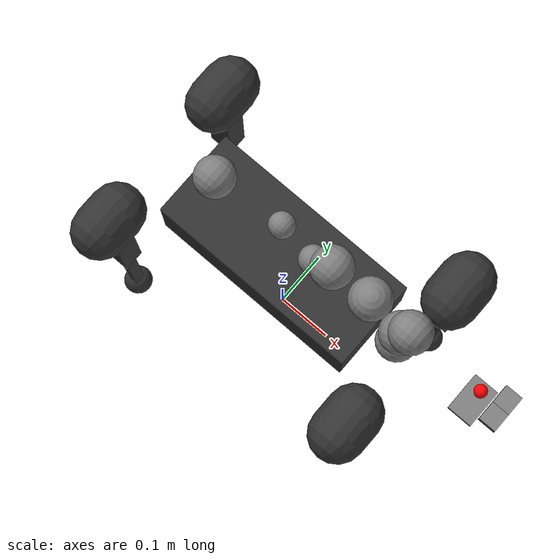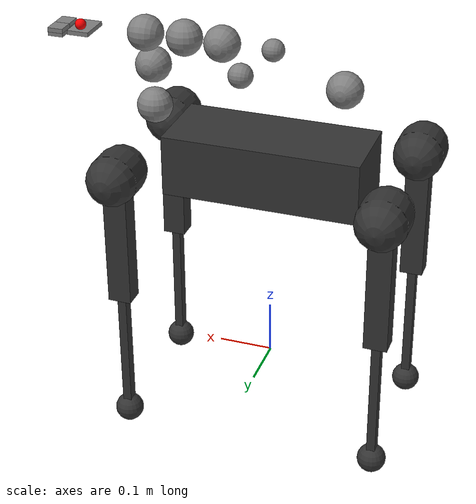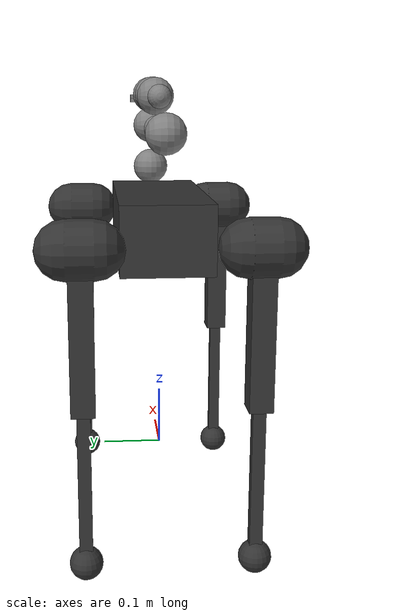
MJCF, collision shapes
<mujoco model="aliengo_description">
    <compiler angle="radian" autolimits="true"/>

    <default>
        <joint damping="0.6" armature="0.01" frictionloss="0.2"/>

        <default class="visual">
            <geom type="mesh" contype="0" conaffinity="0" group="2"/>
        </default>
        <default class="collision">
            <geom group="3" rgba="0.2 0.2 0.2 0.5"/>
        </default>

        <default class="hip">
            <motor ctrlrange="-44.4 44.4"/>
        </default>
        <default class="thigh">
            <motor ctrlrange="-35.278 35.278"/>
        </default>
        <default class="calf">
            <motor ctrlrange="-35.278 35.278"/>
        </default>

        <default class="collision_arm">
            <geom type="sphere" group="3" mass="0" density="0"/>
            <default class="z1_gripper_stator_collision">
            <geom pos="0.051 0 0" type="mesh"/>
            </default>
            <default class="z1_gripper_stator_pad_collision_1">
            <geom type="box" size="0.014 0.015 0.004" pos="0.186 -0.015 -0.0125"/>
            </default>
            <default class="z1_gripper_stator_pad_collision_2">
            <geom type="box" size="0.014 0.015 0.004" pos="0.186 0.015 -0.0125"/>
            </default>
            <default class="z1_gripper_mover_collision">
            <geom type="mesh"/>
            </default>
            <default class="z1_gripper_mover_pad_collision_1">
            <geom type="box" size="0.014 0.015 0.004" pos="0.086 -0.015 -0.0055"/>
            </default>
            <default class="z1_gripper_mover_pad_collision_2">
            <geom type="box" size="0.014 0.015 0.004" pos="0.086 0.015 -0.0055"/>
            </default>
        </default>

    </default>

    <asset>
        <mesh name="trunk" file="aliengo/assets/trunk.stl"/>
        <mesh name="hip" file="aliengo/assets/hip.stl"/>
        <mesh name="thigh_mirror" file="aliengo/assets/thigh_mirror.stl"/>
        <mesh name="calf" file="aliengo/assets/calf.stl"/>
        <mesh name="thigh" file="aliengo/assets/thigh.stl"/>

        <mesh file="z1/assets/z1_Link00.stl"/>
        <mesh file="z1/assets/z1_Link01.stl"/>
        <mesh file="z1/assets/z1_Link02.stl"/>
        <mesh file="z1/assets/z1_Link03.stl"/>
        <mesh file="z1/assets/z1_Link04.stl"/>
        <mesh file="z1/assets/z1_Link05.stl"/>
        <mesh file="z1/assets/z1_Link06.stl"/>
        <mesh file="z1/assets/z1_GripperStator.stl"/>
        <mesh file="z1/assets/z1_GripperStator_col_1.stl"/>
        <mesh file="z1/assets/z1_GripperStator_col_2.stl"/>
        <mesh file="z1/assets/z1_GripperStator_col_3.stl"/>
        <mesh file="z1/assets/z1_GripperStator_col_4.stl"/>
        <mesh file="z1/assets/z1_GripperStator_col_5.stl"/>
        <mesh file="z1/assets/z1_GripperStator_col_6.stl"/>
        <mesh file="z1/assets/z1_GripperMover.stl"/>
        <mesh file="z1/assets/z1_GripperMover_col_1.stl"/>
        <mesh file="z1/assets/z1_GripperMover_col_2.stl"/>
        <mesh file="z1/assets/z1_GripperMover_col_3.stl"/>
        <mesh file="z1/assets/z1_GripperMover_col_4.stl"/>
        <mesh file="z1/assets/z1_GripperMover_col_5.stl"/>
    </asset>

    <worldbody>

        <body name="trunk" pos="0 0 0.4">
            <inertial pos="0.00846406 0.00404455 -0.000762916" quat="-3.12625e-05 0.708321 0.00247254 0.705886"
                      mass="13.042" diaginertia="0.174706 0.161175 0.033357"/>
            <freejoint/>

            <!-- trunk visual mesh and collision -->
            <geom type="mesh" class="visual" rgba="0.2 0.2 0.2 1" mesh="trunk"/>
            <geom type="box" class="collision" size="0.18 0.075 0.056"/>

            <!-- modify this to add payload -->

            <!-- imu and camera -->
            <site name="imu" pos="0 0 0"/>
            <camera name="robotcam" pos="0.31 -0.005 0.00292751" quat="0.4 0.4 -0.4 -0.4"/>

            <!-- FL leg -->
            <body name="FL_hip" pos="0.2399 0.051 0">
                <inertial pos="-0.022191 0.015144 -1.5e-05" quat="-0.0135493 0.706835 0.0117635 0.707151" mass="1.993"
                          diaginertia="0.00558695 0.00491009 0.00290132"/>
                <joint name="FL_hip_joint" pos="0 0 0" axis="1 0 0" limited="true" range="-1.22173 1.22173"/>

                <!-- FL_hip visual mesh and collision -->
                <geom type="mesh" class="visual" rgba="0.2 0.2 0.2 1" mesh="hip"/>
                <geom type="capsule" class="collision" size="0.046 0.0209" pos="0 0.083 0"
                      quat="0.707107 0.707107 0 0"/>

                <body name="FL_thigh" pos="0 0.083 0">
                    <inertial pos="-0.005607 -0.003877 -0.048199" quat="0.717987 -0.031246 -0.0335669 0.694544"
                              mass="0.639" diaginertia="0.0058474 0.00571186 0.000324584"/>
                    <joint name="FL_thigh_joint" pos="0 0 0" axis="0 1 0"/>

                    <!-- FL_thigh visual mesh and collision -->
                    <geom type="mesh" class="visual" rgba="0.2 0.2 0.2 1" mesh="thigh"/>
                    <geom type="box" class="collision" size="0.125 0.0187 0.0215" pos="0 0 -0.125"
                          quat="0.707107 0 0.707107 0"/>

                    <body name="FL_calf" pos="0 0 -0.25">
                        <inertial pos="0.00215606 4.88427e-05 -0.166671" quat="0.707462 0.00517582 0.00535172 0.706712"
                                  mass="0.267" diaginertia="0.00690975 0.00689712 5.4885e-05"/>
                        <joint name="FL_calf_joint" pos="0 0 0" axis="0 1 0" limited="true" range="-2.77507 -0.645772"/>

                        <!-- FL_calf visual mesh and collision -->
                        <geom type="mesh" class="visual" rgba="0 0 0 1" mesh="calf"/>
                        <geom type="box" class="collision" size="0.125 0.0104 0.008" pos="0 0 -0.125"
                              quat="0.707107 0 0.707107 0"/>

                        <!-- FL_foot only collision -->
                        <geom name="FL" class="collision" size="0.0265" pos="0 0 -0.25"/>
                    </body>
                </body>
            </body>

            <!-- FR leg -->
            <body name="FR_hip" pos="0.2399 -0.051 0">
                <inertial pos="-0.022191 -0.015144 -1.5e-05" quat="0.0135493 0.706835 -0.0117635 0.707151" mass="1.993"
                          diaginertia="0.00558695 0.00491009 0.00290132"/>
                <joint name="FR_hip_joint" pos="0 0 0" axis="1 0 0" limited="true" range="-1.22173 1.22173"/>

                <!-- FR_hip visual mesh and collision -->
                <geom type="mesh" mesh="hip" class="visual" quat="0 1 0 0" rgba="0.2 0.2 0.2 1"/>
                <geom type="capsule" class="collision" size="0.046 0.0209" pos="0 -0.083 0"
                      quat="0.707107 0.707107 0 0"/>

                <body name="FR_thigh" pos="0 -0.083 0">
                    <inertial pos="-0.005607 0.003877 -0.048199" quat="0.694544 -0.0335669 -0.031246 0.717987"
                              mass="0.639" diaginertia="0.0058474 0.00571186 0.000324584"/>
                    <joint name="FR_thigh_joint" pos="0 0 0" axis="0 1 0"/>

                    <!-- FR_thigh visual mesh and collision -->
                    <geom type="mesh" mesh="thigh_mirror" class="visual" rgba="0.2 0.2 0.2 1"/>
                    <geom type="box" class="collision" size="0.125 0.0187 0.0215" pos="0 0 -0.125"
                          quat="0.707107 0 0.707107 0"/>

                    <body name="FR_calf" pos="0 0 -0.25">
                        <inertial pos="0.00215606 4.88427e-05 -0.166671" quat="0.707462 0.00517582 0.00535172 0.706712"
                                  mass="0.267" diaginertia="0.00690975 0.00689712 5.4885e-05"/>
                        <joint name="FR_calf_joint" pos="0 0 0" axis="0 1 0" limited="true" range="-2.77507 -0.645772"/>

                        <!-- FR_calf visual mesh and collision -->
                        <geom type="mesh" mesh="calf" class="visual" rgba="0 0 0 1"/>
                        <geom type="box" class="collision" size="0.125 0.0104 0.008" pos="0 0 -0.125"
                              quat="0.707107 0 0.707107 0"/>

                        <!-- FR_foot only collision -->
                        <geom name="FR" class="collision" size="0.0265" pos="0 0 -0.25"/>
                    </body>
                </body>
            </body>

            <!-- RL leg -->
            <body name="RL_hip" pos="-0.2399 0.051 0">
                <inertial pos="0.022191 0.015144 -1.5e-05" quat="0.0117635 0.707151 -0.0135493 0.706835" mass="1.993"
                          diaginertia="0.00558695 0.00491009 0.00290132"/>
                <joint name="RL_hip_joint" pos="0 0 0" axis="1 0 0" limited="true" range="-1.22173 1.22173"/>

                <!-- RL_hip visual mesh and collision -->
                <geom type="mesh" class="visual" quat="0 0 1 0" rgba="0.2 0.2 0.2 1" mesh="hip"/>
                <geom type="capsule" class="collision" size="0.046 0.0209" pos="0 0.083 0"
                      quat="0.707107 0.707107 0 0"/>

                <body name="RL_thigh" pos="0 0.083 0">
                    <inertial pos="-0.005607 -0.003877 -0.048199" quat="0.717987 -0.031246 -0.0335669 0.694544"
                              mass="0.639" diaginertia="0.0058474 0.00571186 0.000324584"/>
                    <joint name="RL_thigh_joint" pos="0 0 0" axis="0 1 0"/>

                    <!-- RL_thigh visual mesh and collision -->
                    <geom type="mesh" class="visual" rgba="0.2 0.2 0.2 1" mesh="thigh"/>
                    <geom type="box" class="collision" size="0.125 0.0187 0.0215" pos="0 0 -0.125"
                          quat="0.707107 0 0.707107 0"/>

                    <body name="RL_calf" pos="0 0 -0.25">
                        <inertial pos="0.00215606 4.88427e-05 -0.166671" quat="0.707462 0.00517582 0.00535172 0.706712"
                                  mass="0.267" diaginertia="0.00690975 0.00689712 5.4885e-05"/>
                        <joint name="RL_calf_joint" pos="0 0 0" axis="0 1 0" limited="true" range="-2.77507 -0.645772"/>

                        <!-- RL_calf visual mesh and collision -->
                        <geom type="mesh" class="visual" rgba="0 0 0 1" mesh="calf"/>
                        <geom type="box" class="collision" size="0.125 0.0104 0.008" pos="0 0 -0.125"
                              quat="0.707107 0 0.707107 0"/>

                        <!-- RL_foot only collision -->
                        <geom name="RL" class="collision" size="0.0265" pos="0 0 -0.25"/>
                    </body>
                </body>
            </body>

            <!-- RR leg -->
            <body name="RR_hip" pos="-0.2399 -0.051 0">
                <inertial pos="0.022191 -0.015144 -1.5e-05" quat="-0.0117635 0.707151 0.0135493 0.706835" mass="1.993"
                          diaginertia="0.00558695 0.00491009 0.00290132"/>
                <joint name="RR_hip_joint" pos="0 0 0" axis="1 0 0" limited="true" range="-1.22173 1.22173"/>

                <!-- RR_hip visual mesh and collision -->
                <geom type="mesh" class="visual" quat="0 0 0 -1" rgba="0.2 0.2 0.2 1" mesh="hip"/>
                <geom type="capsule" class="collision" size="0.046 0.0209" pos="0 -0.083 0"
                      quat="0.707107 0.707107 0 0"/>

                <body name="RR_thigh" pos="0 -0.083 0">
                    <inertial pos="-0.005607 0.003877 -0.048199" quat="0.694544 -0.0335669 -0.031246 0.717987"
                              mass="0.639" diaginertia="0.0058474 0.00571186 0.000324584"/>
                    <joint name="RR_thigh_joint" pos="0 0 0" axis="0 1 0"/>

                    <!-- RR_thigh visual mesh and collision -->
                    <geom type="mesh" class="visual" rgba="0.2 0.2 0.2 1" mesh="thigh_mirror"/>
                    <geom type="box" class="collision" size="0.125 0.0187 0.0215" pos="0 0 -0.125"
                          quat="0.707107 0 0.707107 0"/>

                    <body name="RR_calf" pos="0 0 -0.25">
                        <inertial pos="0.00215606 4.88427e-05 -0.166671" quat="0.707462 0.00517582 0.00535172 0.706712"
                                  mass="0.267" diaginertia="0.00690975 0.00689712 5.4885e-05"/>
                        <joint name="RR_calf_joint" pos="0 0 0" axis="0 1 0" limited="true" range="-2.77507 -0.645772"/>

                        <!-- RR_calf visual mesh and collision -->
                        <geom type="mesh" class="visual" rgba="0 0 0 1" mesh="calf"/>
                        <geom type="box" class="collision" size="0.125 0.0104 0.008" pos="0 0 -0.125"
                              quat="0.707107 0 0.707107 0"/>

                        <!-- RR_foot only collision -->
                        <geom name="RR" class="collision" size="0.0265" pos="0 0 -0.25"/>
                    </body>
                </body>
            </body>

            <body name="link00" pos="0.22 0 0.055">
            <inertial pos="-0.00334984 -0.00013615 0.0249584" quat="-0.00692194 0.682592 0.00133293 0.730766" mass="0.472475"
                diaginertia="0.000531375 0.000415207 0.000378658"/>
            <geom class="visual" mesh="z1_Link00"/>
            <geom size="0.0325 0.0255" pos="0 0 0.0255" class="collision_arm"/>
                <body name="link01" pos="0 0 0.0585">
                    <inertial pos="2.47e-06 -0.00025198 0.0231717" quat="0.708578 0.705633 0.000281462 -0.000355927" mass="0.673326"
                    diaginertia="0.00128328 0.000839362 0.000719308"/>
                    <joint name="joint1" axis="0 0 1" range="-2.61799 2.61799"/>
                    <geom class="visual" mesh="z1_Link01"/>
                    <body name="link02" pos="0 0 0.045">
                    <inertial pos="-0.110126 0.00240029 0.00158266" quat="0.00748058 0.707092 -0.0114473 0.70699" mass="1.19132"
                        diaginertia="0.0246612 0.0243113 0.00100468"/>
                    <joint name="joint2" axis="0 1 0" range="0 2.96706" damping="2"/>
                    <geom class="visual" mesh="z1_Link02"/>
                    <geom size="0.0325 0.051" quat="1 1 0 0" class="collision_arm"/>
                    <geom size="0.0225 0.1175" pos="-0.1625 0 0" quat="1 0 1 0" class="collision_arm"/>
                    <geom size="0.0325 0.0255" pos="-0.35 0 0" quat="1 1 0 0" class="collision_arm"/>
                    <body name="link03" pos="-0.35 0 0">
                        <inertial pos="0.106092 -0.00541815 0.0347638" quat="0.540557 0.443575 0.426319 0.573839" mass="0.839409"
                        diaginertia="0.00954365 0.00938711 0.000558432"/>
                        <joint name="joint3" axis="0 1 0" range="-2.87979 0"/>
                        <geom class="visual" mesh="z1_Link03"/>
                        <geom size="0.02 0.058" pos="0.128 0 0.055" quat="1 0 1 0" class="collision_arm"/>
                        <geom size="0.0325 0.0295" pos="0.2205 0 0.055" quat="0.5 -0.5 0.5 0.5" class="collision_arm"/>
                        <body name="link04" pos="0.218 0 0.057">
                        <inertial pos="0.0436668 0.00364738 -0.00170192" quat="0.0390835 0.726445 -0.0526787 0.684087"
                            mass="0.564046" diaginertia="0.000981656 0.00094053 0.000302655"/>
                        <joint name="joint4" axis="0 1 0" range="-1.51844 1.51844"/>
                        <geom class="visual" mesh="z1_Link04"/>
                        <geom size="0.0325 0.0335" pos="0.072 0 0" class="collision_arm"/>
                        <body name="link05" pos="0.07 0 0">
                            <inertial pos="0.0312153 0 0.00646316" quat="0.462205 0.535209 0.53785 0.45895" mass="0.389385"
                            diaginertia="0.000558961 0.000547317 0.000167332"/>
                            <joint name="joint5" axis="0 0 1" range="-1.3439 1.3439"/>
                            <geom class="visual" mesh="z1_Link05"/>
                            <body name="link06" pos="0.0492 0 0">
                            <inertial pos="0.0241569 -0.00017355 -0.00143876" quat="0.998779 0.0457735 -0.00663717 0.0173548"
                                mass="0.288758" diaginertia="0.00018333 0.000147464 0.000146786"/>
                            <joint name="joint6" axis="1 0 0" range="-2.79253 2.79253"/>
                            <geom class="visual" mesh="z1_Link06"/>
                            <geom size="0.0325 0.0255" pos="0.0255 0 0" quat="1 0 1 0" class="collision_arm"/>
                            <site name="attachment_site" size="0.01" pos="0.15 0 0" quat="-1 1 1 1" rgba="1 0 0 1" group="1"/>

                            <geom pos="0.051 0 0" type="mesh" mesh="z1_GripperStator" class="visual"/>

                            <geom class="z1_gripper_stator_pad_collision_1"/>
                            <geom class="z1_gripper_stator_pad_collision_2"/>

                            <geom type="box" size="0.02 0.03 0.004" pos="0.15 -0.015 -0.0125"/>

                            <body name="gripperMover" pos="0.1 0 0">
                                <inertial pos="0.0132063 0.00476708 0.00380534" quat="0.0631093 0.669067 -0.0615783 0.737953"
                                mass="0.276213" diaginertia="0.000359044 0.000270888 0.000172378"/>
                                <joint name="jointGripper" axis="0 1 0" range="-1.51844 0"/>
                                <geom type="mesh" mesh="z1_GripperMover" class="visual"/>

                                <geom class="z1_gripper_mover_pad_collision_1"/>
                                <geom class="z1_gripper_mover_pad_collision_2"/>
                            </body>
                            </body>
                        </body>
                        </body>
                    </body>
                    </body>
                </body>
            </body>

        </body>
    </worldbody>

    <actuator>
        <motor name="FL_hip"   class="hip"    gear="1" joint="FL_hip_joint"/>
        <motor name="FL_thigh" class="thigh"  gear="1" joint="FL_thigh_joint"/>
        <motor name="FL_calf"  class="calf"   gear="1" joint="FL_calf_joint"/>
        <motor name="FR_hip"   class="hip"    gear="1" joint="FR_hip_joint"/>
        <motor name="FR_thigh" class="thigh"  gear="1" joint="FR_thigh_joint"/>
        <motor name="FR_calf"  class="calf"   gear="1" joint="FR_calf_joint"/>
        <motor name="RL_hip"   class="hip"    gear="1" joint="RL_hip_joint"/>
        <motor name="RL_thigh" class="thigh"  gear="1" joint="RL_thigh_joint"/>
        <motor name="RL_calf"  class="calf"   gear="1" joint="RL_calf_joint"/>
        <motor name="RR_hip"   class="hip"    gear="1" joint="RR_hip_joint"/>
        <motor name="RR_thigh" class="thigh"  gear="1" joint="RR_thigh_joint"/>
        <motor name="RR_calf"  class="calf"   gear="1" joint="RR_calf_joint" />

        <general name="motor1" joint="joint1" ctrlrange="-2.61799 2.61799"/>
        <general name="motor2" joint="joint2" ctrlrange="0 2.96706" forcerange="-60 60" gainprm="1500"
        biasprm="0 -1500 -150"/>
        <general name="motor3" joint="joint3" ctrlrange="-2.87979 0"/>
        <general name="motor4" joint="joint4" ctrlrange="-1.51844 1.51844"/>
        <general name="motor5" joint="joint5" ctrlrange="-1.3439 1.3439"/>
        <general name="motor6" joint="joint6" ctrlrange="-2.79253 2.79253"/>
        <general name="motorGripper" joint="jointGripper" ctrlrange="-1.51844 0"/>
    </actuator>

    <sensor>

        <jointpos name="FL_hip_pos"     joint="FL_hip_joint"/>
        <jointpos name="FL_thigh_pos"   joint="FL_thigh_joint"/>
        <jointpos name="FL_calf_pos"    joint="FL_calf_joint"/>
        <jointpos name="FR_hip_pos"     joint="FR_hip_joint"/>
        <jointpos name="FR_thigh_pos"   joint="FR_thigh_joint"/>
        <jointpos name="FR_calf_pos"    joint="FR_calf_joint"/>
        <jointpos name="RL_hip_pos"     joint="RL_hip_joint"/>
        <jointpos name="RL_thigh_pos"   joint="RL_thigh_joint"/>
        <jointpos name="RL_calf_pos"    joint="RL_calf_joint"/>
        <jointpos name="RR_hip_pos"     joint="RR_hip_joint"/>
        <jointpos name="RR_thigh_pos"   joint="RR_thigh_joint"/>
        <jointpos name="RR_calf_pos"    joint="RR_calf_joint" />

        <jointvel name="FL_hip_vel"     joint="FL_hip_joint"/>
        <jointvel name="FL_thigh_vel"   joint="FL_thigh_joint"/>
        <jointvel name="FL_calf_vel"    joint="FL_calf_joint"/>
        <jointvel name="FR_hip_vel"     joint="FR_hip_joint"/>
        <jointvel name="FR_thigh_vel"   joint="FR_thigh_joint"/>
        <jointvel name="FR_calf_vel"    joint="FR_calf_joint"/>
        <jointvel name="RL_hip_vel"     joint="RL_hip_joint"/>
        <jointvel name="RL_thigh_vel"   joint="RL_thigh_joint"/>
        <jointvel name="RL_calf_vel"    joint="RL_calf_joint"/>
        <jointvel name="RR_hip_vel"     joint="RR_hip_joint"/>
        <jointvel name="RR_thigh_vel"   joint="RR_thigh_joint"/>
        <jointvel name="RR_calf_vel"    joint="RR_calf_joint" />

        <accelerometer name="Body_Acc" site="imu"/>

        <gyro name="Body_Gyro" site="imu"/>

        <framepos name="Body_Pos" objtype="site" objname="imu"/>

        <framequat name="Body_Quat" objtype="site" objname="imu"/>

    </sensor>

</mujoco>
